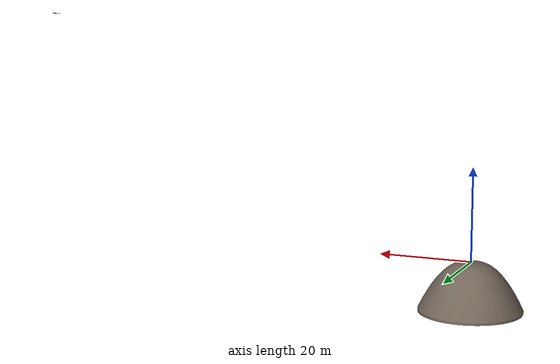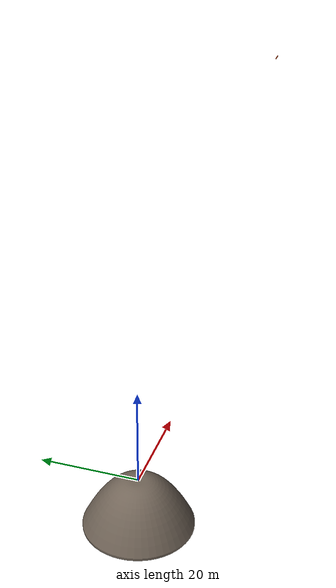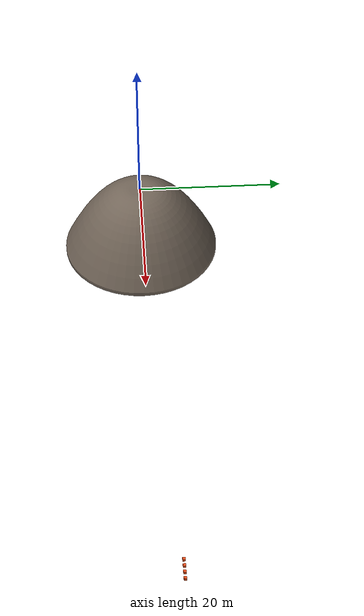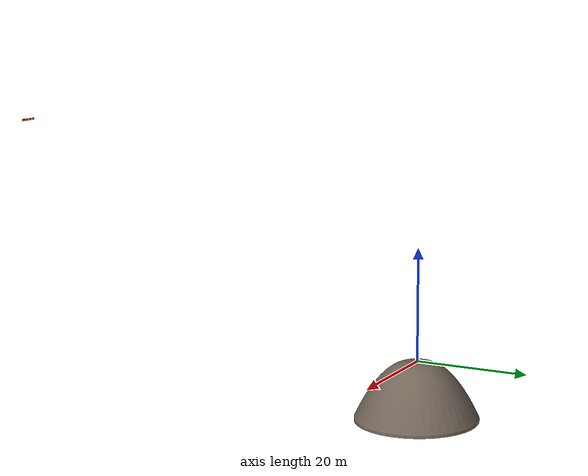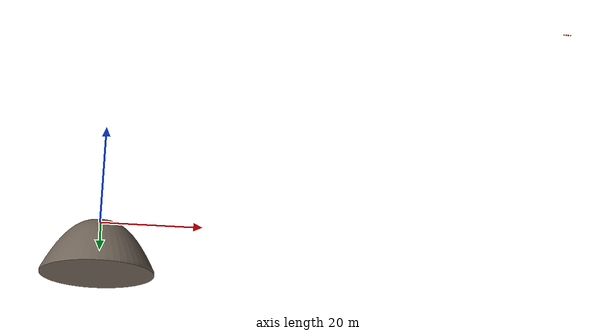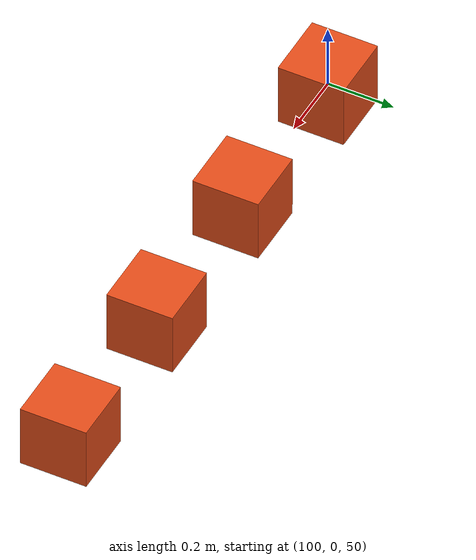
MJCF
<mujoco model="kim_koth_2p">
  <compiler angle="radian" meshdir="assets/" texturedir="assets/" />
  <option integrator="implicitfast" iterations="5" ls_iterations="10" />
  <default>
    <default class="kim">
      <joint solreflimit="0.008" solimplimit="0 0.99 0.01" damping="0.5" frictionloss="0.2" />
      <geom contype="0" conaffinity="0" condim="1" />
      <general biastype="affine" gainprm="0" />
      <default class="kim_collision">
        <geom type="capsule" group="3" rgba="0.8 0.6 0.5 1" />
        <default class="kim_foot_box">
          <geom type="box" group="4" />
        </default>
        <default class="kim_foot_capsule" />
      </default>
      <default class="kim_hip">
        <general gainprm="300" biasprm="0 -300 -8" />
        <default class="kim_hip_pitch">
          <joint range="-2.1 0.5" armature="0.02" axis="0 1 0" />
          <general forcerange="-150 150" />
        </default>
        <default class="kim_hip_roll">
          <joint armature="0.02" axis="1 0 0" />
          <general forcerange="-100 100" />
        </default>
        <default class="kim_hip_yaw">
          <joint range="-0.7 0.7" armature="0.01" />
          <general forcerange="-50 50" />
        </default>
      </default>
      <default class="kim_knee">
        <joint range="-0.05 2.4" armature="0.02" axis="0 1 0" />
        <general forcerange="-150 150" gainprm="400" biasprm="0 -400 -8" />
      </default>
      <default class="kim_ankle">
        <general gainprm="80" biasprm="0 -80 -3" />
        <default class="kim_ankle_pitch">
          <joint range="-0.5 0.8" armature="0.01" axis="0 1 0" />
          <general forcerange="-110 110" gainprm="300" biasprm="0 -300 -6" />
        </default>
        <default class="kim_ankle_roll">
          <joint range="-0.4 0.4" armature="0.005" axis="1 0 0" />
          <general forcerange="-30 30" />
        </default>
      </default>
      <default class="kim_waist_yaw">
        <joint range="-0.8 0.8" armature="0.02" />
        <general forcerange="-60 60" gainprm="250" biasprm="0 -250 -6" />
      </default>
      <default class="kim_waist_roll">
        <joint range="-0.45 0.45" armature="0.02" axis="1 0 0" />
        <general forcerange="-100 100" gainprm="350" biasprm="0 -350 -8" />
      </default>
      <default class="kim_waist_pitch">
        <joint range="-0.4 1" armature="0.02" axis="0 1 0" />
        <general forcerange="-150 150" gainprm="350" biasprm="0 -350 -8" />
      </default>
      <default class="kim_shoulder">
        <general gainprm="80" biasprm="0 -80 -3" />
        <default class="kim_shoulder_pitch">
          <joint range="-3 0.9" armature="0.005" axis="0 1 0" />
          <general forcerange="-55 55" />
        </default>
        <default class="kim_shoulder_roll">
          <joint armature="0.005" axis="1 0 0" />
          <general forcerange="-50 50" />
        </default>
        <default class="kim_shoulder_yaw">
          <joint range="-1.4 1.4" armature="0.003" />
          <general forcerange="-30 30" />
        </default>
      </default>
      <default class="kim_elbow">
        <joint range="0 2.5" armature="0.004" axis="0 -1 0" />
        <general forcerange="-45 45" gainprm="60" biasprm="0 -60 -2" />
      </default>
      <default class="kim_wrist">
        <general gainprm="15" biasprm="0 -15 -0.5" />
        <default class="kim_wrist_roll">
          <joint range="-1.4 1.4" armature="0.001" />
          <general forcerange="-10 10" />
        </default>
        <default class="kim_wrist_pitch">
          <joint range="-1 1" armature="0.001" axis="0 1 0" />
          <general forcerange="-8 8" />
        </default>
        <default class="kim_wrist_yaw">
          <joint range="-0.4 0.4" armature="0.001" axis="1 0 0" />
          <general forcerange="-8 8" />
        </default>
      </default>
    </default>
  </default>
  <asset>
    <mesh name="arena" file="arena.stl" />
  </asset>
  <worldbody>
    <geom name="arena" pos="0 0 0" quat="1 0 0 0" type="mesh" contype="4" conaffinity="31" friction="0.6" rgba="0.45 0.4 0.35 1" mesh="arena" />
    <light pos="0 0 6" type="directional" />
    <body name="a_pelvis" childclass="kim" pos="-1.4 0 0.78">
      <joint name="a_floating_base_joint" type="free" solreflimit="0.02" solimplimit="0.9 0.95 0.001" damping="0" frictionloss="0" />
      <geom name="a_pelvis_collision" class="kim_collision" size="0.12 0.02" pos="0 0 -0.0226" quat="0.707107 0.707107 0 0" contype="1" conaffinity="6" condim="3" friction="0.8" mass="6.9832" />
      <body name="a_left_hip_pitch_link" pos="0 0.07405 -0.0452">
        <inertial pos="0 0 0" mass="0.4" diaginertia="0.00036 0.00036 0.00036" />
        <joint name="a_left_hip_pitch_joint" class="kim_hip_pitch" />
        <body name="a_left_hip_roll_link">
          <inertial pos="0 0 0" mass="0.4" diaginertia="0.00036 0.00036 0.00036" />
          <joint name="a_left_hip_roll_joint" class="kim_hip_roll" range="-0.4 0.8" />
          <body name="a_left_hip_yaw_link">
            <joint name="a_left_hip_yaw_joint" class="kim_hip_yaw" />
            <geom name="a_left_thigh_collision" class="kim_collision" size="0.085 0.113931" pos="0.002175 -0.004225 -0.135549" quat="0.999847 -0.0155776 -0.00801925 0" contype="1" conaffinity="6" condim="3" friction="0.8" mass="7.4768" />
            <body name="a_left_knee_link" pos="0.00435 -0.00845 -0.2711">
              <joint name="a_left_knee_joint" class="kim_knee" />
              <geom name="a_left_shin_collision" class="kim_collision" size="0.05379 0.0848592" pos="-0.002475 -0.00522 -0.101667" quat="0.999597 -0.025641 0.0121574 0" contype="1" conaffinity="22" condim="3" friction="0.8" mass="1.7508" />
              <geom name="a_left_linkage_brace_collision" class="kim_collision" size="0.03912 0.0594007" pos="-0.00639375 -0.013485 -0.262645" quat="0.999597 -0.0256414 0.0121575 0" contype="1" conaffinity="22" condim="3" friction="0.8" mass="0.94276" />
              <body name="a_left_ankle_pitch_link" pos="-0.00825 -0.0174 -0.3389">
                <inertial pos="0 0 0" mass="0.15" diaginertia="0.000135 0.000135 0.000135" />
                <joint name="a_left_ankle_pitch_joint" class="kim_ankle_pitch" />
                <body name="a_left_ankle_roll_link">
                  <joint name="a_left_ankle_roll_joint" class="kim_ankle_roll" />
                  <geom name="a_left_foot_box_collision" class="kim_foot_box" size="0.1341 0.04995 0.012" pos="0.071 0 -0.0859" contype="17" conaffinity="22" condim="3" friction="0.6" mass="0.5124" />
                  <geom name="a_left_foot1_collision" class="kim_foot_capsule" size="0.012 0.0275" pos="0.1626 -0.034965 -0.0839" quat="0.707107 0 -0.707107 0" contype="17" conaffinity="22" condim="3" friction="0.6" mass="0.02" />
                  <geom name="a_left_foot3_collision" class="kim_foot_capsule" size="0.012 0.0275" pos="0.1626 0.034965 -0.0839" quat="0.707107 0 -0.707107 0" contype="17" conaffinity="22" condim="3" friction="0.6" mass="0.02" />
                  <geom name="a_left_foot2_collision" class="kim_foot_capsule" size="0.022 0.1091" pos="0.071 0 -0.0739" quat="0.707107 0 -0.707107 0" contype="17" conaffinity="22" condim="3" friction="0.6" mass="0.02" />
                  <site name="a_left_foot" pos="0.071 0 -0.0979" />
                </body>
              </body>
            </body>
          </body>
        </body>
      </body>
      <body name="a_right_hip_pitch_link" pos="0 -0.07405 -0.0452">
        <inertial pos="0 0 0" mass="0.4" diaginertia="0.00036 0.00036 0.00036" />
        <joint name="a_right_hip_pitch_joint" class="kim_hip_pitch" />
        <body name="a_right_hip_roll_link">
          <inertial pos="0 0 0" mass="0.4" diaginertia="0.00036 0.00036 0.00036" />
          <joint name="a_right_hip_roll_joint" class="kim_hip_roll" range="-0.8 0.4" />
          <body name="a_right_hip_yaw_link">
            <joint name="a_right_hip_yaw_joint" class="kim_hip_yaw" />
            <geom name="a_right_thigh_collision" class="kim_collision" size="0.085 0.113931" pos="0.002175 0.004225 -0.135549" quat="0.999847 0.0155776 -0.00801925 0" contype="1" conaffinity="6" condim="3" friction="0.8" mass="7.4768" />
            <body name="a_right_knee_link" pos="0.00435 0.00845 -0.2711">
              <joint name="a_right_knee_joint" class="kim_knee" />
              <geom name="a_right_shin_collision" class="kim_collision" size="0.05379 0.0848592" pos="-0.002475 0.00522 -0.101667" quat="0.999597 0.025641 0.0121574 0" contype="1" conaffinity="22" condim="3" friction="0.8" mass="1.7508" />
              <geom name="a_right_linkage_brace_collision" class="kim_collision" size="0.03912 0.0594007" pos="-0.00639375 0.013485 -0.262645" quat="0.999597 0.0256414 0.0121575 0" contype="1" conaffinity="22" condim="3" friction="0.8" mass="0.94276" />
              <body name="a_right_ankle_pitch_link" pos="-0.00825 0.0174 -0.3389">
                <inertial pos="0 0 0" mass="0.15" diaginertia="0.000135 0.000135 0.000135" />
                <joint name="a_right_ankle_pitch_joint" class="kim_ankle_pitch" />
                <body name="a_right_ankle_roll_link">
                  <joint name="a_right_ankle_roll_joint" class="kim_ankle_roll" />
                  <geom name="a_right_foot_box_collision" class="kim_foot_box" size="0.1341 0.04995 0.012" pos="0.071 0 -0.0859" contype="17" conaffinity="22" condim="3" friction="0.6" mass="0.5124" />
                  <geom name="a_right_foot1_collision" class="kim_foot_capsule" size="0.012 0.0275" pos="0.1626 -0.034965 -0.0839" quat="0.707107 0 -0.707107 0" contype="17" conaffinity="22" condim="3" friction="0.6" mass="0.02" />
                  <geom name="a_right_foot3_collision" class="kim_foot_capsule" size="0.012 0.0275" pos="0.1626 0.034965 -0.0839" quat="0.707107 0 -0.707107 0" contype="17" conaffinity="22" condim="3" friction="0.6" mass="0.02" />
                  <geom name="a_right_foot2_collision" class="kim_foot_capsule" size="0.022 0.1091" pos="0.071 0 -0.0739" quat="0.707107 0 -0.707107 0" contype="17" conaffinity="22" condim="3" friction="0.6" mass="0.02" />
                  <site name="a_right_foot" pos="0.071 0 -0.0979" />
                </body>
              </body>
            </body>
          </body>
        </body>
      </body>
      <body name="a_waist_yaw_link" pos="0.0076 0 0.1204">
        <inertial pos="0 0 0" mass="0.5" diaginertia="0.00045 0.00045 0.00045" />
        <joint name="a_waist_yaw_joint" class="kim_waist_yaw" />
        <body name="a_waist_roll_link">
          <inertial pos="0 0 0" mass="0.5" diaginertia="0.00045 0.00045 0.00045" />
          <joint name="a_waist_roll_joint" class="kim_waist_roll" />
          <body name="a_torso_link">
            <joint name="a_waist_pitch_joint" class="kim_waist_pitch" />
            <geom name="a_abdomen_collision" class="kim_collision" size="0.11 0.0732" pos="0.00855 0 0.0904" quat="0.707107 0.707107 0 0" contype="1" conaffinity="6" condim="3" friction="0.8" mass="7.204" />
            <geom name="a_chest_collision" class="kim_collision" size="0.11 0.1159" pos="0.01265 0 0.27385" quat="0.707107 0.707107 0 0" contype="1" conaffinity="6" condim="3" friction="0.8" mass="8.652" />
            <geom name="a_head_collision" class="kim_collision" size="0.1072" pos="-0.0162 0 0.6193" type="sphere" contype="1" conaffinity="6" condim="3" friction="0.8" mass="3.7408" />
            <body name="a_left_shoulder_pitch_link" pos="-0.0198 0.2259 0.3669">
              <inertial pos="0 0 0" mass="0.2" diaginertia="0.00018 0.00018 0.00018" />
              <joint name="a_left_shoulder_pitch_joint" class="kim_shoulder_pitch" />
              <body name="a_left_shoulder_roll_link">
                <inertial pos="0 0 0" mass="0.2" diaginertia="0.00018 0.00018 0.00018" />
                <joint name="a_left_shoulder_roll_joint" class="kim_shoulder_roll" range="-0.3 2.8" />
                <body name="a_left_shoulder_yaw_link">
                  <joint name="a_left_shoulder_yaw_joint" class="kim_shoulder_yaw" />
                  <geom name="a_left_upper_arm_collision" class="kim_collision" size="0.045 0.08564" pos="0 0 -0.10705" contype="1" conaffinity="6" condim="3" friction="0.8" mass="1.028" />
                  <body name="a_left_elbow_link" pos="0 0 -0.2141">
                    <joint name="a_left_elbow_joint" class="kim_elbow" />
                    <geom name="a_left_forearm_collision" class="kim_collision" size="0.0358 0.08449" pos="0 0 -0.10437" contype="1" conaffinity="6" condim="3" friction="0.8" mass="0.6728" />
                    <body name="a_left_wrist_roll_link" pos="0 0 -0.1988">
                      <inertial pos="0 0 0" mass="0.05" diaginertia="4.5e-05 4.5e-05 4.5e-05" />
                      <joint name="a_left_wrist_roll_joint" class="kim_wrist_roll" />
                      <body name="a_left_wrist_pitch_link">
                        <inertial pos="0 0 0" mass="0.05" diaginertia="4.5e-05 4.5e-05 4.5e-05" />
                        <joint name="a_left_wrist_pitch_joint" class="kim_wrist_pitch" />
                        <body name="a_left_wrist_yaw_link">
                          <joint name="a_left_wrist_yaw_joint" class="kim_wrist_yaw" />
                          <geom name="a_left_hand_collision" class="kim_collision" size="0.03 0.07436" pos="0 0 -0.09436" contype="1" conaffinity="6" condim="3" friction="0.8" mass="0.3136" />
                        </body>
                      </body>
                    </body>
                  </body>
                </body>
              </body>
            </body>
            <body name="a_right_shoulder_pitch_link" pos="-0.0198 -0.2259 0.3669">
              <inertial pos="0 0 0" mass="0.2" diaginertia="0.00018 0.00018 0.00018" />
              <joint name="a_right_shoulder_pitch_joint" class="kim_shoulder_pitch" />
              <body name="a_right_shoulder_roll_link">
                <inertial pos="0 0 0" mass="0.2" diaginertia="0.00018 0.00018 0.00018" />
                <joint name="a_right_shoulder_roll_joint" class="kim_shoulder_roll" range="-2.8 0.3" />
                <body name="a_right_shoulder_yaw_link">
                  <joint name="a_right_shoulder_yaw_joint" class="kim_shoulder_yaw" />
                  <geom name="a_right_upper_arm_collision" class="kim_collision" size="0.045 0.08564" pos="0 0 -0.10705" contype="1" conaffinity="6" condim="3" friction="0.8" mass="1.028" />
                  <body name="a_right_elbow_link" pos="0 0 -0.2141">
                    <joint name="a_right_elbow_joint" class="kim_elbow" />
                    <geom name="a_right_forearm_collision" class="kim_collision" size="0.0358 0.08449" pos="0 0 -0.10437" contype="1" conaffinity="6" condim="3" friction="0.8" mass="0.6728" />
                    <body name="a_right_wrist_roll_link" pos="0 0 -0.1988">
                      <inertial pos="0 0 0" mass="0.05" diaginertia="4.5e-05 4.5e-05 4.5e-05" />
                      <joint name="a_right_wrist_roll_joint" class="kim_wrist_roll" />
                      <body name="a_right_wrist_pitch_link">
                        <inertial pos="0 0 0" mass="0.05" diaginertia="4.5e-05 4.5e-05 4.5e-05" />
                        <joint name="a_right_wrist_pitch_joint" class="kim_wrist_pitch" />
                        <body name="a_right_wrist_yaw_link">
                          <joint name="a_right_wrist_yaw_joint" class="kim_wrist_yaw" />
                          <geom name="a_right_hand_collision" class="kim_collision" size="0.03 0.07436" pos="0 0 -0.09436" contype="1" conaffinity="6" condim="3" friction="0.8" mass="0.3136" />
                        </body>
                      </body>
                    </body>
                  </body>
                </body>
              </body>
            </body>
          </body>
        </body>
      </body>
    </body>
    <body name="b_pelvis" childclass="kim" pos="1.4 0 0.78" quat="0 0 0 1">
      <joint name="b_floating_base_joint" type="free" solreflimit="0.02" solimplimit="0.9 0.95 0.001" damping="0" frictionloss="0" />
      <geom name="b_pelvis_collision" class="kim_collision" size="0.12 0.02" pos="0 0 -0.0226" quat="0.707107 0.707107 0 0" contype="2" conaffinity="5" condim="3" friction="0.8" mass="6.9832" />
      <body name="b_left_hip_pitch_link" pos="0 0.07405 -0.0452">
        <inertial pos="0 0 0" mass="0.4" diaginertia="0.00036 0.00036 0.00036" />
        <joint name="b_left_hip_pitch_joint" class="kim_hip_pitch" />
        <body name="b_left_hip_roll_link">
          <inertial pos="0 0 0" mass="0.4" diaginertia="0.00036 0.00036 0.00036" />
          <joint name="b_left_hip_roll_joint" class="kim_hip_roll" range="-0.4 0.8" />
          <body name="b_left_hip_yaw_link">
            <joint name="b_left_hip_yaw_joint" class="kim_hip_yaw" />
            <geom name="b_left_thigh_collision" class="kim_collision" size="0.085 0.113931" pos="0.002175 -0.004225 -0.135549" quat="0.999847 -0.0155776 -0.00801925 0" contype="2" conaffinity="5" condim="3" friction="0.8" mass="7.4768" />
            <body name="b_left_knee_link" pos="0.00435 -0.00845 -0.2711">
              <joint name="b_left_knee_joint" class="kim_knee" />
              <geom name="b_left_shin_collision" class="kim_collision" size="0.05379 0.0848592" pos="-0.002475 -0.00522 -0.101667" quat="0.999597 -0.025641 0.0121574 0" contype="2" conaffinity="21" condim="3" friction="0.8" mass="1.7508" />
              <geom name="b_left_linkage_brace_collision" class="kim_collision" size="0.03912 0.0594007" pos="-0.00639375 -0.013485 -0.262645" quat="0.999597 -0.0256414 0.0121575 0" contype="2" conaffinity="21" condim="3" friction="0.8" mass="0.94276" />
              <body name="b_left_ankle_pitch_link" pos="-0.00825 -0.0174 -0.3389">
                <inertial pos="0 0 0" mass="0.15" diaginertia="0.000135 0.000135 0.000135" />
                <joint name="b_left_ankle_pitch_joint" class="kim_ankle_pitch" />
                <body name="b_left_ankle_roll_link">
                  <joint name="b_left_ankle_roll_joint" class="kim_ankle_roll" />
                  <geom name="b_left_foot_box_collision" class="kim_foot_box" size="0.1341 0.04995 0.012" pos="0.071 0 -0.0859" contype="18" conaffinity="21" condim="3" friction="0.6" mass="0.5124" />
                  <geom name="b_left_foot1_collision" class="kim_foot_capsule" size="0.012 0.0275" pos="0.1626 -0.034965 -0.0839" quat="0.707107 0 -0.707107 0" contype="18" conaffinity="21" condim="3" friction="0.6" mass="0.02" />
                  <geom name="b_left_foot3_collision" class="kim_foot_capsule" size="0.012 0.0275" pos="0.1626 0.034965 -0.0839" quat="0.707107 0 -0.707107 0" contype="18" conaffinity="21" condim="3" friction="0.6" mass="0.02" />
                  <geom name="b_left_foot2_collision" class="kim_foot_capsule" size="0.022 0.1091" pos="0.071 0 -0.0739" quat="0.707107 0 -0.707107 0" contype="18" conaffinity="21" condim="3" friction="0.6" mass="0.02" />
                  <site name="b_left_foot" pos="0.071 0 -0.0979" />
                </body>
              </body>
            </body>
          </body>
        </body>
      </body>
      <body name="b_right_hip_pitch_link" pos="0 -0.07405 -0.0452">
        <inertial pos="0 0 0" mass="0.4" diaginertia="0.00036 0.00036 0.00036" />
        <joint name="b_right_hip_pitch_joint" class="kim_hip_pitch" />
        <body name="b_right_hip_roll_link">
          <inertial pos="0 0 0" mass="0.4" diaginertia="0.00036 0.00036 0.00036" />
          <joint name="b_right_hip_roll_joint" class="kim_hip_roll" range="-0.8 0.4" />
          <body name="b_right_hip_yaw_link">
            <joint name="b_right_hip_yaw_joint" class="kim_hip_yaw" />
            <geom name="b_right_thigh_collision" class="kim_collision" size="0.085 0.113931" pos="0.002175 0.004225 -0.135549" quat="0.999847 0.0155776 -0.00801925 0" contype="2" conaffinity="5" condim="3" friction="0.8" mass="7.4768" />
            <body name="b_right_knee_link" pos="0.00435 0.00845 -0.2711">
              <joint name="b_right_knee_joint" class="kim_knee" />
              <geom name="b_right_shin_collision" class="kim_collision" size="0.05379 0.0848592" pos="-0.002475 0.00522 -0.101667" quat="0.999597 0.025641 0.0121574 0" contype="2" conaffinity="21" condim="3" friction="0.8" mass="1.7508" />
              <geom name="b_right_linkage_brace_collision" class="kim_collision" size="0.03912 0.0594007" pos="-0.00639375 0.013485 -0.262645" quat="0.999597 0.0256414 0.0121575 0" contype="2" conaffinity="21" condim="3" friction="0.8" mass="0.94276" />
              <body name="b_right_ankle_pitch_link" pos="-0.00825 0.0174 -0.3389">
                <inertial pos="0 0 0" mass="0.15" diaginertia="0.000135 0.000135 0.000135" />
                <joint name="b_right_ankle_pitch_joint" class="kim_ankle_pitch" />
                <body name="b_right_ankle_roll_link">
                  <joint name="b_right_ankle_roll_joint" class="kim_ankle_roll" />
                  <geom name="b_right_foot_box_collision" class="kim_foot_box" size="0.1341 0.04995 0.012" pos="0.071 0 -0.0859" contype="18" conaffinity="21" condim="3" friction="0.6" mass="0.5124" />
                  <geom name="b_right_foot1_collision" class="kim_foot_capsule" size="0.012 0.0275" pos="0.1626 -0.034965 -0.0839" quat="0.707107 0 -0.707107 0" contype="18" conaffinity="21" condim="3" friction="0.6" mass="0.02" />
                  <geom name="b_right_foot3_collision" class="kim_foot_capsule" size="0.012 0.0275" pos="0.1626 0.034965 -0.0839" quat="0.707107 0 -0.707107 0" contype="18" conaffinity="21" condim="3" friction="0.6" mass="0.02" />
                  <geom name="b_right_foot2_collision" class="kim_foot_capsule" size="0.022 0.1091" pos="0.071 0 -0.0739" quat="0.707107 0 -0.707107 0" contype="18" conaffinity="21" condim="3" friction="0.6" mass="0.02" />
                  <site name="b_right_foot" pos="0.071 0 -0.0979" />
                </body>
              </body>
            </body>
          </body>
        </body>
      </body>
      <body name="b_waist_yaw_link" pos="0.0076 0 0.1204">
        <inertial pos="0 0 0" mass="0.5" diaginertia="0.00045 0.00045 0.00045" />
        <joint name="b_waist_yaw_joint" class="kim_waist_yaw" />
        <body name="b_waist_roll_link">
          <inertial pos="0 0 0" mass="0.5" diaginertia="0.00045 0.00045 0.00045" />
          <joint name="b_waist_roll_joint" class="kim_waist_roll" />
          <body name="b_torso_link">
            <joint name="b_waist_pitch_joint" class="kim_waist_pitch" />
            <geom name="b_abdomen_collision" class="kim_collision" size="0.11 0.0732" pos="0.00855 0 0.0904" quat="0.707107 0.707107 0 0" contype="2" conaffinity="5" condim="3" friction="0.8" mass="7.204" />
            <geom name="b_chest_collision" class="kim_collision" size="0.11 0.1159" pos="0.01265 0 0.27385" quat="0.707107 0.707107 0 0" contype="2" conaffinity="5" condim="3" friction="0.8" mass="8.652" />
            <geom name="b_head_collision" class="kim_collision" size="0.1072" pos="-0.0162 0 0.6193" type="sphere" contype="2" conaffinity="5" condim="3" friction="0.8" mass="3.7408" />
            <body name="b_left_shoulder_pitch_link" pos="-0.0198 0.2259 0.3669">
              <inertial pos="0 0 0" mass="0.2" diaginertia="0.00018 0.00018 0.00018" />
              <joint name="b_left_shoulder_pitch_joint" class="kim_shoulder_pitch" />
              <body name="b_left_shoulder_roll_link">
                <inertial pos="0 0 0" mass="0.2" diaginertia="0.00018 0.00018 0.00018" />
                <joint name="b_left_shoulder_roll_joint" class="kim_shoulder_roll" range="-0.3 2.8" />
                <body name="b_left_shoulder_yaw_link">
                  <joint name="b_left_shoulder_yaw_joint" class="kim_shoulder_yaw" />
                  <geom name="b_left_upper_arm_collision" class="kim_collision" size="0.045 0.08564" pos="0 0 -0.10705" contype="2" conaffinity="5" condim="3" friction="0.8" mass="1.028" />
                  <body name="b_left_elbow_link" pos="0 0 -0.2141">
                    <joint name="b_left_elbow_joint" class="kim_elbow" />
                    <geom name="b_left_forearm_collision" class="kim_collision" size="0.0358 0.08449" pos="0 0 -0.10437" contype="2" conaffinity="5" condim="3" friction="0.8" mass="0.6728" />
                    <body name="b_left_wrist_roll_link" pos="0 0 -0.1988">
                      <inertial pos="0 0 0" mass="0.05" diaginertia="4.5e-05 4.5e-05 4.5e-05" />
                      <joint name="b_left_wrist_roll_joint" class="kim_wrist_roll" />
                      <body name="b_left_wrist_pitch_link">
                        <inertial pos="0 0 0" mass="0.05" diaginertia="4.5e-05 4.5e-05 4.5e-05" />
                        <joint name="b_left_wrist_pitch_joint" class="kim_wrist_pitch" />
                        <body name="b_left_wrist_yaw_link">
                          <joint name="b_left_wrist_yaw_joint" class="kim_wrist_yaw" />
                          <geom name="b_left_hand_collision" class="kim_collision" size="0.03 0.07436" pos="0 0 -0.09436" contype="2" conaffinity="5" condim="3" friction="0.8" mass="0.3136" />
                        </body>
                      </body>
                    </body>
                  </body>
                </body>
              </body>
            </body>
            <body name="b_right_shoulder_pitch_link" pos="-0.0198 -0.2259 0.3669">
              <inertial pos="0 0 0" mass="0.2" diaginertia="0.00018 0.00018 0.00018" />
              <joint name="b_right_shoulder_pitch_joint" class="kim_shoulder_pitch" />
              <body name="b_right_shoulder_roll_link">
                <inertial pos="0 0 0" mass="0.2" diaginertia="0.00018 0.00018 0.00018" />
                <joint name="b_right_shoulder_roll_joint" class="kim_shoulder_roll" range="-2.8 0.3" />
                <body name="b_right_shoulder_yaw_link">
                  <joint name="b_right_shoulder_yaw_joint" class="kim_shoulder_yaw" />
                  <geom name="b_right_upper_arm_collision" class="kim_collision" size="0.045 0.08564" pos="0 0 -0.10705" contype="2" conaffinity="5" condim="3" friction="0.8" mass="1.028" />
                  <body name="b_right_elbow_link" pos="0 0 -0.2141">
                    <joint name="b_right_elbow_joint" class="kim_elbow" />
                    <geom name="b_right_forearm_collision" class="kim_collision" size="0.0358 0.08449" pos="0 0 -0.10437" contype="2" conaffinity="5" condim="3" friction="0.8" mass="0.6728" />
                    <body name="b_right_wrist_roll_link" pos="0 0 -0.1988">
                      <inertial pos="0 0 0" mass="0.05" diaginertia="4.5e-05 4.5e-05 4.5e-05" />
                      <joint name="b_right_wrist_roll_joint" class="kim_wrist_roll" />
                      <body name="b_right_wrist_pitch_link">
                        <inertial pos="0 0 0" mass="0.05" diaginertia="4.5e-05 4.5e-05 4.5e-05" />
                        <joint name="b_right_wrist_pitch_joint" class="kim_wrist_pitch" />
                        <body name="b_right_wrist_yaw_link">
                          <joint name="b_right_wrist_yaw_joint" class="kim_wrist_yaw" />
                          <geom name="b_right_hand_collision" class="kim_collision" size="0.03 0.07436" pos="0 0 -0.09436" contype="2" conaffinity="5" condim="3" friction="0.8" mass="0.3136" />
                        </body>
                      </body>
                    </body>
                  </body>
                </body>
              </body>
            </body>
          </body>
        </body>
      </body>
    </body>
    <body name="box0" pos="100 0 50">
      <joint name="box0_free" type="free" />
      <geom name="box0_geom" size="0.1 0.1 0.1" type="box" contype="8" conaffinity="15" friction="0.5" rgba="0.9 0.3 0.1 1" mass="2" />
    </body>
    <body name="box1" pos="100.5 0 50">
      <joint name="box1_free" type="free" />
      <geom name="box1_geom" size="0.1 0.1 0.1" type="box" contype="8" conaffinity="15" friction="0.5" rgba="0.9 0.3 0.1 1" mass="2" />
    </body>
    <body name="box2" pos="101 0 50">
      <joint name="box2_free" type="free" />
      <geom name="box2_geom" size="0.1 0.1 0.1" type="box" contype="8" conaffinity="15" friction="0.5" rgba="0.9 0.3 0.1 1" mass="2" />
    </body>
    <body name="box3" pos="101.5 0 50">
      <joint name="box3_free" type="free" />
      <geom name="box3_geom" size="0.1 0.1 0.1" type="box" contype="8" conaffinity="15" friction="0.5" rgba="0.9 0.3 0.1 1" mass="2" />
    </body>
  </worldbody>
  <contact>
    <exclude body1="a_left_knee_link" body2="a_left_ankle_roll_link" />
    <exclude body1="a_right_knee_link" body2="a_right_ankle_roll_link" />
    <exclude body1="b_left_knee_link" body2="b_left_ankle_roll_link" />
    <exclude body1="b_right_knee_link" body2="b_right_ankle_roll_link" />
  </contact>
  <actuator>
    <general name="a_left_hip_pitch_joint" class="kim_hip_pitch" joint="a_left_hip_pitch_joint" ctrlrange="-2.1 0.5" biastype="affine" gainprm="300" biasprm="0 -300 -8" ctrllimited="true" forcerange="-150 150" forcelimited="true" />
    <general name="a_left_hip_roll_joint" class="kim_hip_roll" joint="a_left_hip_roll_joint" ctrlrange="-0.4 0.8" biastype="affine" gainprm="300" biasprm="0 -300 -8" ctrllimited="true" forcerange="-100 100" forcelimited="true" />
    <general name="a_left_hip_yaw_joint" class="kim_hip_yaw" joint="a_left_hip_yaw_joint" ctrlrange="-0.7 0.7" biastype="affine" gainprm="300" biasprm="0 -300 -8" ctrllimited="true" forcerange="-50 50" forcelimited="true" />
    <general name="a_left_knee_joint" class="kim_knee" joint="a_left_knee_joint" ctrlrange="-0.05 2.4" biastype="affine" gainprm="400" biasprm="0 -400 -8" ctrllimited="true" forcerange="-150 150" forcelimited="true" />
    <general name="a_left_ankle_pitch_joint" class="kim_ankle_pitch" joint="a_left_ankle_pitch_joint" ctrlrange="-0.5 0.8" biastype="affine" gainprm="300" biasprm="0 -300 -6" ctrllimited="true" forcerange="-110 110" forcelimited="true" />
    <general name="a_left_ankle_roll_joint" class="kim_ankle_roll" joint="a_left_ankle_roll_joint" ctrlrange="-0.4 0.4" biastype="affine" gainprm="80" biasprm="0 -80 -3" ctrllimited="true" forcerange="-30 30" forcelimited="true" />
    <general name="a_right_hip_pitch_joint" class="kim_hip_pitch" joint="a_right_hip_pitch_joint" ctrlrange="-2.1 0.5" biastype="affine" gainprm="300" biasprm="0 -300 -8" ctrllimited="true" forcerange="-150 150" forcelimited="true" />
    <general name="a_right_hip_roll_joint" class="kim_hip_roll" joint="a_right_hip_roll_joint" ctrlrange="-0.8 0.4" biastype="affine" gainprm="300" biasprm="0 -300 -8" ctrllimited="true" forcerange="-100 100" forcelimited="true" />
    <general name="a_right_hip_yaw_joint" class="kim_hip_yaw" joint="a_right_hip_yaw_joint" ctrlrange="-0.7 0.7" biastype="affine" gainprm="300" biasprm="0 -300 -8" ctrllimited="true" forcerange="-50 50" forcelimited="true" />
    <general name="a_right_knee_joint" class="kim_knee" joint="a_right_knee_joint" ctrlrange="-0.05 2.4" biastype="affine" gainprm="400" biasprm="0 -400 -8" ctrllimited="true" forcerange="-150 150" forcelimited="true" />
    <general name="a_right_ankle_pitch_joint" class="kim_ankle_pitch" joint="a_right_ankle_pitch_joint" ctrlrange="-0.5 0.8" biastype="affine" gainprm="300" biasprm="0 -300 -6" ctrllimited="true" forcerange="-110 110" forcelimited="true" />
    <general name="a_right_ankle_roll_joint" class="kim_ankle_roll" joint="a_right_ankle_roll_joint" ctrlrange="-0.4 0.4" biastype="affine" gainprm="80" biasprm="0 -80 -3" ctrllimited="true" forcerange="-30 30" forcelimited="true" />
    <general name="a_waist_yaw_joint" class="kim_waist_yaw" joint="a_waist_yaw_joint" ctrlrange="-0.8 0.8" biastype="affine" gainprm="250" biasprm="0 -250 -6" ctrllimited="true" forcerange="-60 60" forcelimited="true" />
    <general name="a_waist_roll_joint" class="kim_waist_roll" joint="a_waist_roll_joint" ctrlrange="-0.45 0.45" biastype="affine" gainprm="350" biasprm="0 -350 -8" ctrllimited="true" forcerange="-100 100" forcelimited="true" />
    <general name="a_waist_pitch_joint" class="kim_waist_pitch" joint="a_waist_pitch_joint" ctrlrange="-0.4 1" biastype="affine" gainprm="350" biasprm="0 -350 -8" ctrllimited="true" forcerange="-150 150" forcelimited="true" />
    <general name="a_left_shoulder_pitch_joint" class="kim_shoulder_pitch" joint="a_left_shoulder_pitch_joint" ctrlrange="-3 0.9" biastype="affine" gainprm="80" biasprm="0 -80 -3" ctrllimited="true" forcerange="-55 55" forcelimited="true" />
    <general name="a_left_shoulder_roll_joint" class="kim_shoulder_roll" joint="a_left_shoulder_roll_joint" ctrlrange="-0.3 2.8" biastype="affine" gainprm="80" biasprm="0 -80 -3" ctrllimited="true" forcerange="-50 50" forcelimited="true" />
    <general name="a_left_shoulder_yaw_joint" class="kim_shoulder_yaw" joint="a_left_shoulder_yaw_joint" ctrlrange="-1.4 1.4" biastype="affine" gainprm="80" biasprm="0 -80 -3" ctrllimited="true" forcerange="-30 30" forcelimited="true" />
    <general name="a_left_elbow_joint" class="kim_elbow" joint="a_left_elbow_joint" ctrlrange="0 2.5" biastype="affine" gainprm="60" biasprm="0 -60 -2" ctrllimited="true" forcerange="-45 45" forcelimited="true" />
    <general name="a_left_wrist_roll_joint" class="kim_wrist_roll" joint="a_left_wrist_roll_joint" ctrlrange="-1.4 1.4" biastype="affine" gainprm="15" biasprm="0 -15 -0.5" ctrllimited="true" forcerange="-10 10" forcelimited="true" />
    <general name="a_left_wrist_pitch_joint" class="kim_wrist_pitch" joint="a_left_wrist_pitch_joint" ctrlrange="-1 1" biastype="affine" gainprm="15" biasprm="0 -15 -0.5" ctrllimited="true" forcerange="-8 8" forcelimited="true" />
    <general name="a_left_wrist_yaw_joint" class="kim_wrist_yaw" joint="a_left_wrist_yaw_joint" ctrlrange="-0.4 0.4" biastype="affine" gainprm="15" biasprm="0 -15 -0.5" ctrllimited="true" forcerange="-8 8" forcelimited="true" />
    <general name="a_right_shoulder_pitch_joint" class="kim_shoulder_pitch" joint="a_right_shoulder_pitch_joint" ctrlrange="-3 0.9" biastype="affine" gainprm="80" biasprm="0 -80 -3" ctrllimited="true" forcerange="-55 55" forcelimited="true" />
    <general name="a_right_shoulder_roll_joint" class="kim_shoulder_roll" joint="a_right_shoulder_roll_joint" ctrlrange="-2.8 0.3" biastype="affine" gainprm="80" biasprm="0 -80 -3" ctrllimited="true" forcerange="-50 50" forcelimited="true" />
    <general name="a_right_shoulder_yaw_joint" class="kim_shoulder_yaw" joint="a_right_shoulder_yaw_joint" ctrlrange="-1.4 1.4" biastype="affine" gainprm="80" biasprm="0 -80 -3" ctrllimited="true" forcerange="-30 30" forcelimited="true" />
    <general name="a_right_elbow_joint" class="kim_elbow" joint="a_right_elbow_joint" ctrlrange="0 2.5" biastype="affine" gainprm="60" biasprm="0 -60 -2" ctrllimited="true" forcerange="-45 45" forcelimited="true" />
    <general name="a_right_wrist_roll_joint" class="kim_wrist_roll" joint="a_right_wrist_roll_joint" ctrlrange="-1.4 1.4" biastype="affine" gainprm="15" biasprm="0 -15 -0.5" ctrllimited="true" forcerange="-10 10" forcelimited="true" />
    <general name="a_right_wrist_pitch_joint" class="kim_wrist_pitch" joint="a_right_wrist_pitch_joint" ctrlrange="-1 1" biastype="affine" gainprm="15" biasprm="0 -15 -0.5" ctrllimited="true" forcerange="-8 8" forcelimited="true" />
    <general name="a_right_wrist_yaw_joint" class="kim_wrist_yaw" joint="a_right_wrist_yaw_joint" ctrlrange="-0.4 0.4" biastype="affine" gainprm="15" biasprm="0 -15 -0.5" ctrllimited="true" forcerange="-8 8" forcelimited="true" />
    <general name="b_left_hip_pitch_joint" class="kim_hip_pitch" joint="b_left_hip_pitch_joint" ctrlrange="-2.1 0.5" biastype="affine" gainprm="300" biasprm="0 -300 -8" ctrllimited="true" forcerange="-150 150" forcelimited="true" />
    <general name="b_left_hip_roll_joint" class="kim_hip_roll" joint="b_left_hip_roll_joint" ctrlrange="-0.4 0.8" biastype="affine" gainprm="300" biasprm="0 -300 -8" ctrllimited="true" forcerange="-100 100" forcelimited="true" />
    <general name="b_left_hip_yaw_joint" class="kim_hip_yaw" joint="b_left_hip_yaw_joint" ctrlrange="-0.7 0.7" biastype="affine" gainprm="300" biasprm="0 -300 -8" ctrllimited="true" forcerange="-50 50" forcelimited="true" />
    <general name="b_left_knee_joint" class="kim_knee" joint="b_left_knee_joint" ctrlrange="-0.05 2.4" biastype="affine" gainprm="400" biasprm="0 -400 -8" ctrllimited="true" forcerange="-150 150" forcelimited="true" />
    <general name="b_left_ankle_pitch_joint" class="kim_ankle_pitch" joint="b_left_ankle_pitch_joint" ctrlrange="-0.5 0.8" biastype="affine" gainprm="300" biasprm="0 -300 -6" ctrllimited="true" forcerange="-110 110" forcelimited="true" />
    <general name="b_left_ankle_roll_joint" class="kim_ankle_roll" joint="b_left_ankle_roll_joint" ctrlrange="-0.4 0.4" biastype="affine" gainprm="80" biasprm="0 -80 -3" ctrllimited="true" forcerange="-30 30" forcelimited="true" />
    <general name="b_right_hip_pitch_joint" class="kim_hip_pitch" joint="b_right_hip_pitch_joint" ctrlrange="-2.1 0.5" biastype="affine" gainprm="300" biasprm="0 -300 -8" ctrllimited="true" forcerange="-150 150" forcelimited="true" />
    <general name="b_right_hip_roll_joint" class="kim_hip_roll" joint="b_right_hip_roll_joint" ctrlrange="-0.8 0.4" biastype="affine" gainprm="300" biasprm="0 -300 -8" ctrllimited="true" forcerange="-100 100" forcelimited="true" />
    <general name="b_right_hip_yaw_joint" class="kim_hip_yaw" joint="b_right_hip_yaw_joint" ctrlrange="-0.7 0.7" biastype="affine" gainprm="300" biasprm="0 -300 -8" ctrllimited="true" forcerange="-50 50" forcelimited="true" />
    <general name="b_right_knee_joint" class="kim_knee" joint="b_right_knee_joint" ctrlrange="-0.05 2.4" biastype="affine" gainprm="400" biasprm="0 -400 -8" ctrllimited="true" forcerange="-150 150" forcelimited="true" />
    <general name="b_right_ankle_pitch_joint" class="kim_ankle_pitch" joint="b_right_ankle_pitch_joint" ctrlrange="-0.5 0.8" biastype="affine" gainprm="300" biasprm="0 -300 -6" ctrllimited="true" forcerange="-110 110" forcelimited="true" />
    <general name="b_right_ankle_roll_joint" class="kim_ankle_roll" joint="b_right_ankle_roll_joint" ctrlrange="-0.4 0.4" biastype="affine" gainprm="80" biasprm="0 -80 -3" ctrllimited="true" forcerange="-30 30" forcelimited="true" />
    <general name="b_waist_yaw_joint" class="kim_waist_yaw" joint="b_waist_yaw_joint" ctrlrange="-0.8 0.8" biastype="affine" gainprm="250" biasprm="0 -250 -6" ctrllimited="true" forcerange="-60 60" forcelimited="true" />
    <general name="b_waist_roll_joint" class="kim_waist_roll" joint="b_waist_roll_joint" ctrlrange="-0.45 0.45" biastype="affine" gainprm="350" biasprm="0 -350 -8" ctrllimited="true" forcerange="-100 100" forcelimited="true" />
    <general name="b_waist_pitch_joint" class="kim_waist_pitch" joint="b_waist_pitch_joint" ctrlrange="-0.4 1" biastype="affine" gainprm="350" biasprm="0 -350 -8" ctrllimited="true" forcerange="-150 150" forcelimited="true" />
    <general name="b_left_shoulder_pitch_joint" class="kim_shoulder_pitch" joint="b_left_shoulder_pitch_joint" ctrlrange="-3 0.9" biastype="affine" gainprm="80" biasprm="0 -80 -3" ctrllimited="true" forcerange="-55 55" forcelimited="true" />
    <general name="b_left_shoulder_roll_joint" class="kim_shoulder_roll" joint="b_left_shoulder_roll_joint" ctrlrange="-0.3 2.8" biastype="affine" gainprm="80" biasprm="0 -80 -3" ctrllimited="true" forcerange="-50 50" forcelimited="true" />
    <general name="b_left_shoulder_yaw_joint" class="kim_shoulder_yaw" joint="b_left_shoulder_yaw_joint" ctrlrange="-1.4 1.4" biastype="affine" gainprm="80" biasprm="0 -80 -3" ctrllimited="true" forcerange="-30 30" forcelimited="true" />
    <general name="b_left_elbow_joint" class="kim_elbow" joint="b_left_elbow_joint" ctrlrange="0 2.5" biastype="affine" gainprm="60" biasprm="0 -60 -2" ctrllimited="true" forcerange="-45 45" forcelimited="true" />
    <general name="b_left_wrist_roll_joint" class="kim_wrist_roll" joint="b_left_wrist_roll_joint" ctrlrange="-1.4 1.4" biastype="affine" gainprm="15" biasprm="0 -15 -0.5" ctrllimited="true" forcerange="-10 10" forcelimited="true" />
    <general name="b_left_wrist_pitch_joint" class="kim_wrist_pitch" joint="b_left_wrist_pitch_joint" ctrlrange="-1 1" biastype="affine" gainprm="15" biasprm="0 -15 -0.5" ctrllimited="true" forcerange="-8 8" forcelimited="true" />
    <general name="b_left_wrist_yaw_joint" class="kim_wrist_yaw" joint="b_left_wrist_yaw_joint" ctrlrange="-0.4 0.4" biastype="affine" gainprm="15" biasprm="0 -15 -0.5" ctrllimited="true" forcerange="-8 8" forcelimited="true" />
    <general name="b_right_shoulder_pitch_joint" class="kim_shoulder_pitch" joint="b_right_shoulder_pitch_joint" ctrlrange="-3 0.9" biastype="affine" gainprm="80" biasprm="0 -80 -3" ctrllimited="true" forcerange="-55 55" forcelimited="true" />
    <general name="b_right_shoulder_roll_joint" class="kim_shoulder_roll" joint="b_right_shoulder_roll_joint" ctrlrange="-2.8 0.3" biastype="affine" gainprm="80" biasprm="0 -80 -3" ctrllimited="true" forcerange="-50 50" forcelimited="true" />
    <general name="b_right_shoulder_yaw_joint" class="kim_shoulder_yaw" joint="b_right_shoulder_yaw_joint" ctrlrange="-1.4 1.4" biastype="affine" gainprm="80" biasprm="0 -80 -3" ctrllimited="true" forcerange="-30 30" forcelimited="true" />
    <general name="b_right_elbow_joint" class="kim_elbow" joint="b_right_elbow_joint" ctrlrange="0 2.5" biastype="affine" gainprm="60" biasprm="0 -60 -2" ctrllimited="true" forcerange="-45 45" forcelimited="true" />
    <general name="b_right_wrist_roll_joint" class="kim_wrist_roll" joint="b_right_wrist_roll_joint" ctrlrange="-1.4 1.4" biastype="affine" gainprm="15" biasprm="0 -15 -0.5" ctrllimited="true" forcerange="-10 10" forcelimited="true" />
    <general name="b_right_wrist_pitch_joint" class="kim_wrist_pitch" joint="b_right_wrist_pitch_joint" ctrlrange="-1 1" biastype="affine" gainprm="15" biasprm="0 -15 -0.5" ctrllimited="true" forcerange="-8 8" forcelimited="true" />
    <general name="b_right_wrist_yaw_joint" class="kim_wrist_yaw" joint="b_right_wrist_yaw_joint" ctrlrange="-0.4 0.4" biastype="affine" gainprm="15" biasprm="0 -15 -0.5" ctrllimited="true" forcerange="-8 8" forcelimited="true" />
  </actuator>
  <keyframe>
    <key name="default" qpos="-1.4 0 0.744367 1 0 0 0 -0.15 0 0 0.3 -0.15 0 -0.15 0 0 0.3 -0.15 0 0 0 0 0 0.12 0 0.35 0 0 0 0 -0.12 0 0.35 0 0 0 1.4 0 0.744367 0 0 0 1 -0.15 0 0 0.3 -0.15 0 -0.15 0 0 0.3 -0.15 0 0 0 0 0 0.12 0 0.35 0 0 0 0 -0.12 0 0.35 0 0 0 100 0 50 1 0 0 0 100.5 0 50 1 0 0 0 101 0 50 1 0 0 0 101.5 0 50 1 0 0 0" ctrl="-0.144538 -0.0163831 0.00195858 0.281258 -0.125139 0.0120093 -0.144538 0.0163835 -0.00195864 0.281258 -0.125139 -0.0120107 2.2013e-08 1.3883e-07 -0.00391138 -0.00766075 0.127136 0.000915801 0.360133 2.90096e-08 -0.00658932 0.00231514 -0.00766075 -0.127136 -0.000915808 0.360133 -2.89992e-08 -0.00658932 -0.00231514 -0.144538 -0.0163831 0.00195858 0.281258 -0.125139 0.0120093 -0.144538 0.0163835 -0.00195864 0.281258 -0.125139 -0.0120107 2.2013e-08 1.3883e-07 -0.00391138 -0.00766075 0.127136 0.000915801 0.360133 2.90096e-08 -0.00658932 0.00231514 -0.00766075 -0.127136 -0.000915808 0.360133 -2.89992e-08 -0.00658932 -0.00231514" />
  </keyframe>
</mujoco>
